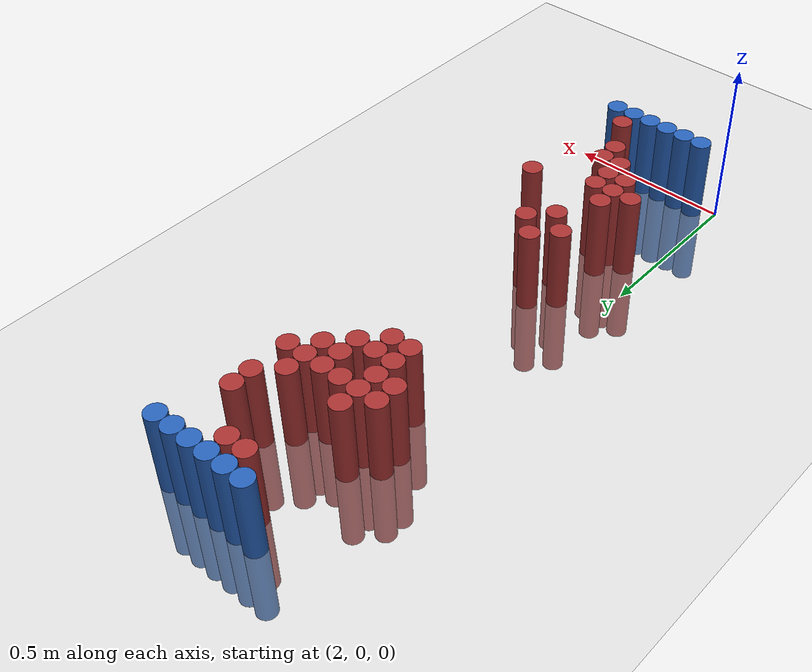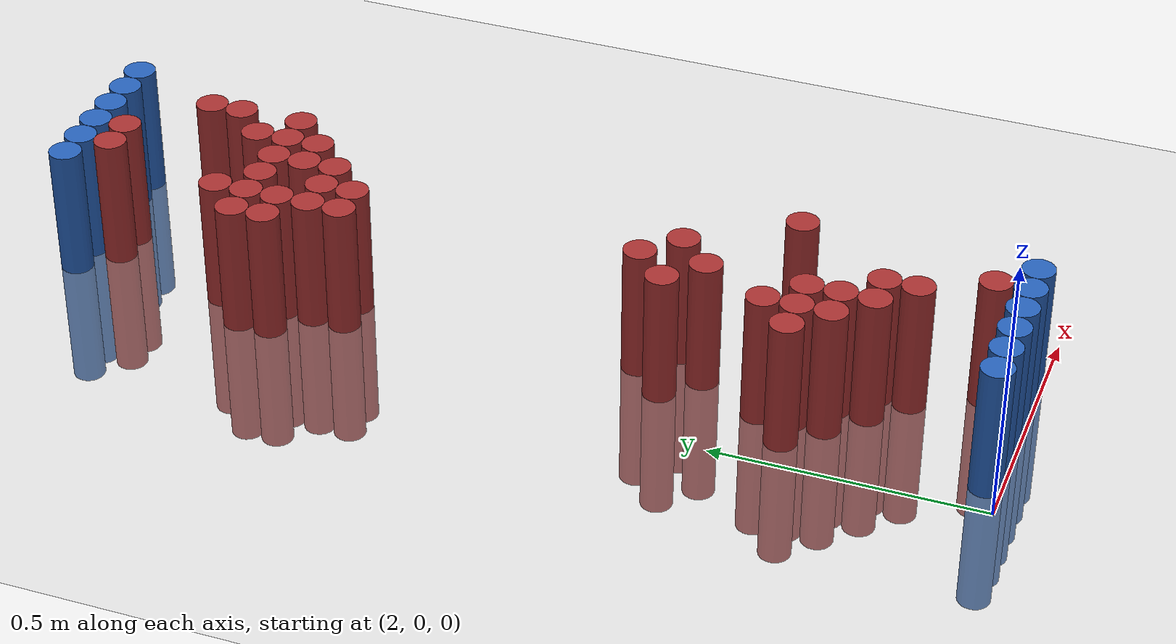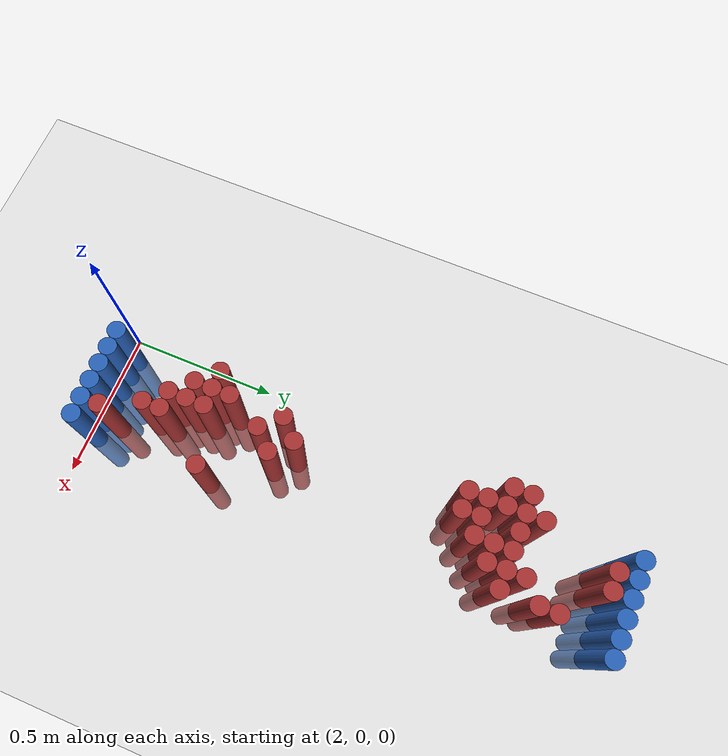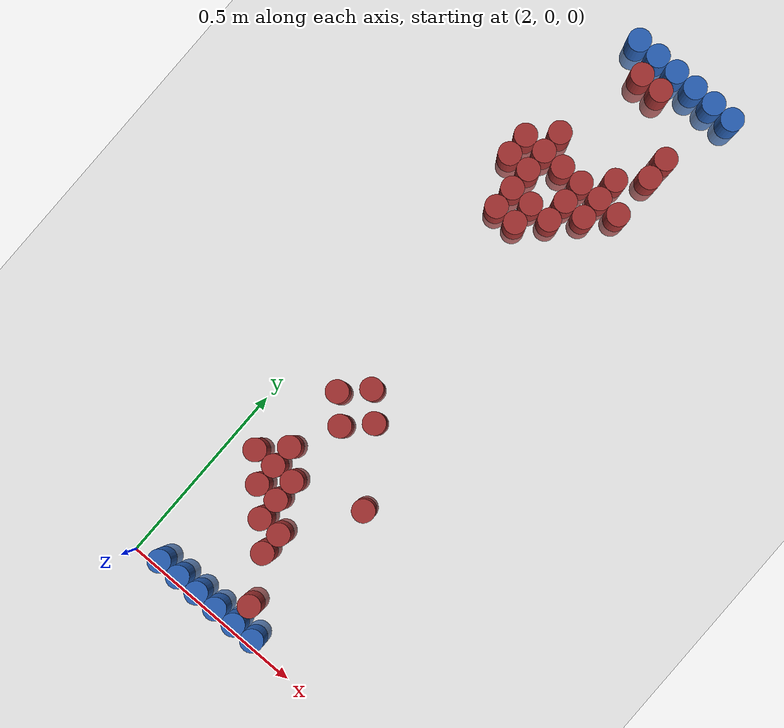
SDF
<sdf version="1.6">
 <world name="default">
  <model name="ground_plane">
   <static>1</static>
   <link name="link">
    <collision name="collision">
     <geometry><plane><normal>0 0 1</normal><size>100 100</size></plane></geometry>
     <surface><friction><ode><mu>100</mu><mu2>50</mu2></ode></friction></surface>
    </collision>
    <visual name="visual">
     <cast_shadows>0</cast_shadows>
     <geometry><plane><normal>0 0 1</normal><size>100 100</size></plane></geometry>
     <material>
      <script><uri>file://media/materials/scripts/gazebo.material</uri><name>Gazebo/Grey</name></script>
     </material>
    </visual>
   </link>
  </model>
  <model name="unit_cylinder_96">
   <static>1</static>
   <pose>2.130000 1.770000 0.000000 0.000000 0.000000 0.000000</pose>
   <link name="link">
    <inertial>
     <mass>1</mass>
     <inertia><ixx>0.145833</ixx><ixy>0</ixy><ixz>0</ixz><iyy>0.145833</iyy><iyz>0</iyz><izz>0.125</izz></inertia>
    </inertial>
    <collision name="collision">
     <geometry><cylinder><radius>0.030000</radius><length>0.5</length></cylinder></geometry>
    </collision>
    <visual name="visual">
     <geometry><cylinder><radius>0.030000</radius><length>0.5</length></cylinder></geometry>
     <material>
      <ambient>0.152000 0.379000 0.720000 1</ambient>
      <diffuse>0.152000 0.379000 0.720000 1</diffuse>
     </material>
     <material>
      <script><name>Gazebo/Grey</name><uri>file://media/materials/scripts/gazebo.material</uri></script>
     </material>
    </visual>
   </link>
  </model>
  <model name="unit_cylinder_97">
   <static>1</static>
   <pose>2.190000 1.770000 0.000000 0.000000 0.000000 0.000000</pose>
   <link name="link">
    <inertial>
     <mass>1</mass>
     <inertia><ixx>0.145833</ixx><ixy>0</ixy><ixz>0</ixz><iyy>0.145833</iyy><iyz>0</iyz><izz>0.125</izz></inertia>
    </inertial>
    <collision name="collision">
     <geometry><cylinder><radius>0.030000</radius><length>0.5</length></cylinder></geometry>
    </collision>
    <visual name="visual">
     <geometry><cylinder><radius>0.030000</radius><length>0.5</length></cylinder></geometry>
     <material>
      <ambient>0.152000 0.379000 0.720000 1</ambient>
      <diffuse>0.152000 0.379000 0.720000 1</diffuse>
     </material>
     <material>
      <script><name>Gazebo/Grey</name><uri>file://media/materials/scripts/gazebo.material</uri></script>
     </material>
    </visual>
   </link>
  </model>
  <model name="unit_cylinder_98">
   <static>1</static>
   <pose>2.250000 1.770000 0.000000 0.000000 0.000000 0.000000</pose>
   <link name="link">
    <inertial>
     <mass>1</mass>
     <inertia><ixx>0.145833</ixx><ixy>0</ixy><ixz>0</ixz><iyy>0.145833</iyy><iyz>0</iyz><izz>0.125</izz></inertia>
    </inertial>
    <collision name="collision">
     <geometry><cylinder><radius>0.030000</radius><length>0.5</length></cylinder></geometry>
    </collision>
    <visual name="visual">
     <geometry><cylinder><radius>0.030000</radius><length>0.5</length></cylinder></geometry>
     <material>
      <ambient>0.152000 0.379000 0.720000 1</ambient>
      <diffuse>0.152000 0.379000 0.720000 1</diffuse>
     </material>
     <material>
      <script><name>Gazebo/Grey</name><uri>file://media/materials/scripts/gazebo.material</uri></script>
     </material>
    </visual>
   </link>
  </model>
  <model name="unit_cylinder_99">
   <static>1</static>
   <pose>2.310000 1.770000 0.000000 0.000000 0.000000 0.000000</pose>
   <link name="link">
    <inertial>
     <mass>1</mass>
     <inertia><ixx>0.145833</ixx><ixy>0</ixy><ixz>0</ixz><iyy>0.145833</iyy><iyz>0</iyz><izz>0.125</izz></inertia>
    </inertial>
    <collision name="collision">
     <geometry><cylinder><radius>0.030000</radius><length>0.5</length></cylinder></geometry>
    </collision>
    <visual name="visual">
     <geometry><cylinder><radius>0.030000</radius><length>0.5</length></cylinder></geometry>
     <material>
      <ambient>0.152000 0.379000 0.720000 1</ambient>
      <diffuse>0.152000 0.379000 0.720000 1</diffuse>
     </material>
     <material>
      <script><name>Gazebo/Grey</name><uri>file://media/materials/scripts/gazebo.material</uri></script>
     </material>
    </visual>
   </link>
  </model>
  <model name="unit_cylinder_100">
   <static>1</static>
   <pose>2.370000 1.770000 0.000000 0.000000 0.000000 0.000000</pose>
   <link name="link">
    <inertial>
     <mass>1</mass>
     <inertia><ixx>0.145833</ixx><ixy>0</ixy><ixz>0</ixz><iyy>0.145833</iyy><iyz>0</iyz><izz>0.125</izz></inertia>
    </inertial>
    <collision name="collision">
     <geometry><cylinder><radius>0.030000</radius><length>0.5</length></cylinder></geometry>
    </collision>
    <visual name="visual">
     <geometry><cylinder><radius>0.030000</radius><length>0.5</length></cylinder></geometry>
     <material>
      <ambient>0.152000 0.379000 0.720000 1</ambient>
      <diffuse>0.152000 0.379000 0.720000 1</diffuse>
     </material>
     <material>
      <script><name>Gazebo/Grey</name><uri>file://media/materials/scripts/gazebo.material</uri></script>
     </material>
    </visual>
   </link>
  </model>
  <model name="unit_cylinder_101">
   <static>1</static>
   <pose>2.430000 1.770000 0.000000 0.000000 0.000000 0.000000</pose>
   <link name="link">
    <inertial>
     <mass>1</mass>
     <inertia><ixx>0.145833</ixx><ixy>0</ixy><ixz>0</ixz><iyy>0.145833</iyy><iyz>0</iyz><izz>0.125</izz></inertia>
    </inertial>
    <collision name="collision">
     <geometry><cylinder><radius>0.030000</radius><length>0.5</length></cylinder></geometry>
    </collision>
    <visual name="visual">
     <geometry><cylinder><radius>0.030000</radius><length>0.5</length></cylinder></geometry>
     <material>
      <ambient>0.152000 0.379000 0.720000 1</ambient>
      <diffuse>0.152000 0.379000 0.720000 1</diffuse>
     </material>
     <material>
      <script><name>Gazebo/Grey</name><uri>file://media/materials/scripts/gazebo.material</uri></script>
     </material>
    </visual>
   </link>
  </model>
  <model name="unit_cylinder_125">
   <static>1</static>
   <pose>2.190000 1.710000 0.000000 0.000000 0.000000 0.000000</pose>
   <link name="link">
    <inertial>
     <mass>1</mass>
     <inertia><ixx>0.145833</ixx><ixy>0</ixy><ixz>0</ixz><iyy>0.145833</iyy><iyz>0</iyz><izz>0.125</izz></inertia>
    </inertial>
    <collision name="collision">
     <geometry><cylinder><radius>0.030000</radius><length>0.5</length></cylinder></geometry>
    </collision>
    <visual name="visual">
     <geometry><cylinder><radius>0.030000</radius><length>0.5</length></cylinder></geometry>
     <material>
      <ambient>0.648000 0.192000 0.192000 1</ambient>
      <diffuse>0.648000 0.192000 0.192000 1</diffuse>
     </material>
     <material>
      <script><name>Gazebo/Grey</name><uri>file://media/materials/scripts/gazebo.material</uri></script>
     </material>
    </visual>
   </link>
  </model>
  <model name="unit_cylinder_126">
   <static>1</static>
   <pose>2.250000 1.710000 0.000000 0.000000 0.000000 0.000000</pose>
   <link name="link">
    <inertial>
     <mass>1</mass>
     <inertia><ixx>0.145833</ixx><ixy>0</ixy><ixz>0</ixz><iyy>0.145833</iyy><iyz>0</iyz><izz>0.125</izz></inertia>
    </inertial>
    <collision name="collision">
     <geometry><cylinder><radius>0.030000</radius><length>0.5</length></cylinder></geometry>
    </collision>
    <visual name="visual">
     <geometry><cylinder><radius>0.030000</radius><length>0.5</length></cylinder></geometry>
     <material>
      <ambient>0.648000 0.192000 0.192000 1</ambient>
      <diffuse>0.648000 0.192000 0.192000 1</diffuse>
     </material>
     <material>
      <script><name>Gazebo/Grey</name><uri>file://media/materials/scripts/gazebo.material</uri></script>
     </material>
    </visual>
   </link>
  </model>
  <model name="unit_cylinder_154">
   <static>1</static>
   <pose>2.370000 1.590000 0.000000 0.000000 0.000000 0.000000</pose>
   <link name="link">
    <inertial>
     <mass>1</mass>
     <inertia><ixx>0.145833</ixx><ixy>0</ixy><ixz>0</ixz><iyy>0.145833</iyy><iyz>0</iyz><izz>0.125</izz></inertia>
    </inertial>
    <collision name="collision">
     <geometry><cylinder><radius>0.030000</radius><length>0.5</length></cylinder></geometry>
    </collision>
    <visual name="visual">
     <geometry><cylinder><radius>0.030000</radius><length>0.5</length></cylinder></geometry>
     <material>
      <ambient>0.648000 0.192000 0.192000 1</ambient>
      <diffuse>0.648000 0.192000 0.192000 1</diffuse>
     </material>
     <material>
      <script><name>Gazebo/Grey</name><uri>file://media/materials/scripts/gazebo.material</uri></script>
     </material>
    </visual>
   </link>
  </model>
  <model name="unit_cylinder_159">
   <static>1</static>
   <pose>2.370000 1.530000 0.000000 0.000000 0.000000 0.000000</pose>
   <link name="link">
    <inertial>
     <mass>1</mass>
     <inertia><ixx>0.145833</ixx><ixy>0</ixy><ixz>0</ixz><iyy>0.145833</iyy><iyz>0</iyz><izz>0.125</izz></inertia>
    </inertial>
    <collision name="collision">
     <geometry><cylinder><radius>0.030000</radius><length>0.5</length></cylinder></geometry>
    </collision>
    <visual name="visual">
     <geometry><cylinder><radius>0.030000</radius><length>0.5</length></cylinder></geometry>
     <material>
      <ambient>0.648000 0.192000 0.192000 1</ambient>
      <diffuse>0.648000 0.192000 0.192000 1</diffuse>
     </material>
     <material>
      <script><name>Gazebo/Grey</name><uri>file://media/materials/scripts/gazebo.material</uri></script>
     </material>
    </visual>
   </link>
  </model>
  <model name="unit_cylinder_167">
   <static>1</static>
   <pose>2.130000 1.470000 0.000000 0.000000 0.000000 0.000000</pose>
   <link name="link">
    <inertial>
     <mass>1</mass>
     <inertia><ixx>0.145833</ixx><ixy>0</ixy><ixz>0</ixz><iyy>0.145833</iyy><iyz>0</iyz><izz>0.125</izz></inertia>
    </inertial>
    <collision name="collision">
     <geometry><cylinder><radius>0.030000</radius><length>0.5</length></cylinder></geometry>
    </collision>
    <visual name="visual">
     <geometry><cylinder><radius>0.030000</radius><length>0.5</length></cylinder></geometry>
     <material>
      <ambient>0.648000 0.192000 0.192000 1</ambient>
      <diffuse>0.648000 0.192000 0.192000 1</diffuse>
     </material>
     <material>
      <script><name>Gazebo/Grey</name><uri>file://media/materials/scripts/gazebo.material</uri></script>
     </material>
    </visual>
   </link>
  </model>
  <model name="unit_cylinder_168">
   <static>1</static>
   <pose>2.310000 1.470000 0.000000 0.000000 0.000000 0.000000</pose>
   <link name="link">
    <inertial>
     <mass>1</mass>
     <inertia><ixx>0.145833</ixx><ixy>0</ixy><ixz>0</ixz><iyy>0.145833</iyy><iyz>0</iyz><izz>0.125</izz></inertia>
    </inertial>
    <collision name="collision">
     <geometry><cylinder><radius>0.030000</radius><length>0.5</length></cylinder></geometry>
    </collision>
    <visual name="visual">
     <geometry><cylinder><radius>0.030000</radius><length>0.5</length></cylinder></geometry>
     <material>
      <ambient>0.648000 0.192000 0.192000 1</ambient>
      <diffuse>0.648000 0.192000 0.192000 1</diffuse>
     </material>
     <material>
      <script><name>Gazebo/Grey</name><uri>file://media/materials/scripts/gazebo.material</uri></script>
     </material>
    </visual>
   </link>
  </model>
  <model name="unit_cylinder_169">
   <static>1</static>
   <pose>2.070000 1.410000 0.000000 0.000000 0.000000 0.000000</pose>
   <link name="link">
    <inertial>
     <mass>1</mass>
     <inertia><ixx>0.145833</ixx><ixy>0</ixy><ixz>0</ixz><iyy>0.145833</iyy><iyz>0</iyz><izz>0.125</izz></inertia>
    </inertial>
    <collision name="collision">
     <geometry><cylinder><radius>0.030000</radius><length>0.5</length></cylinder></geometry>
    </collision>
    <visual name="visual">
     <geometry><cylinder><radius>0.030000</radius><length>0.5</length></cylinder></geometry>
     <material>
      <ambient>0.648000 0.192000 0.192000 1</ambient>
      <diffuse>0.648000 0.192000 0.192000 1</diffuse>
     </material>
     <material>
      <script><name>Gazebo/Grey</name><uri>file://media/materials/scripts/gazebo.material</uri></script>
     </material>
    </visual>
   </link>
  </model>
  <model name="unit_cylinder_170">
   <static>1</static>
   <pose>2.130000 1.410000 0.000000 0.000000 0.000000 0.000000</pose>
   <link name="link">
    <inertial>
     <mass>1</mass>
     <inertia><ixx>0.145833</ixx><ixy>0</ixy><ixz>0</ixz><iyy>0.145833</iyy><iyz>0</iyz><izz>0.125</izz></inertia>
    </inertial>
    <collision name="collision">
     <geometry><cylinder><radius>0.030000</radius><length>0.5</length></cylinder></geometry>
    </collision>
    <visual name="visual">
     <geometry><cylinder><radius>0.030000</radius><length>0.5</length></cylinder></geometry>
     <material>
      <ambient>0.648000 0.192000 0.192000 1</ambient>
      <diffuse>0.648000 0.192000 0.192000 1</diffuse>
     </material>
     <material>
      <script><name>Gazebo/Grey</name><uri>file://media/materials/scripts/gazebo.material</uri></script>
     </material>
    </visual>
   </link>
  </model>
  <model name="unit_cylinder_171">
   <static>1</static>
   <pose>2.190000 1.410000 0.000000 0.000000 0.000000 0.000000</pose>
   <link name="link">
    <inertial>
     <mass>1</mass>
     <inertia><ixx>0.145833</ixx><ixy>0</ixy><ixz>0</ixz><iyy>0.145833</iyy><iyz>0</iyz><izz>0.125</izz></inertia>
    </inertial>
    <collision name="collision">
     <geometry><cylinder><radius>0.030000</radius><length>0.5</length></cylinder></geometry>
    </collision>
    <visual name="visual">
     <geometry><cylinder><radius>0.030000</radius><length>0.5</length></cylinder></geometry>
     <material>
      <ambient>0.648000 0.192000 0.192000 1</ambient>
      <diffuse>0.648000 0.192000 0.192000 1</diffuse>
     </material>
     <material>
      <script><name>Gazebo/Grey</name><uri>file://media/materials/scripts/gazebo.material</uri></script>
     </material>
    </visual>
   </link>
  </model>
  <model name="unit_cylinder_172">
   <static>1</static>
   <pose>2.250000 1.410000 0.000000 0.000000 0.000000 0.000000</pose>
   <link name="link">
    <inertial>
     <mass>1</mass>
     <inertia><ixx>0.145833</ixx><ixy>0</ixy><ixz>0</ixz><iyy>0.145833</iyy><iyz>0</iyz><izz>0.125</izz></inertia>
    </inertial>
    <collision name="collision">
     <geometry><cylinder><radius>0.030000</radius><length>0.5</length></cylinder></geometry>
    </collision>
    <visual name="visual">
     <geometry><cylinder><radius>0.030000</radius><length>0.5</length></cylinder></geometry>
     <material>
      <ambient>0.648000 0.192000 0.192000 1</ambient>
      <diffuse>0.648000 0.192000 0.192000 1</diffuse>
     </material>
     <material>
      <script><name>Gazebo/Grey</name><uri>file://media/materials/scripts/gazebo.material</uri></script>
     </material>
    </visual>
   </link>
  </model>
  <model name="unit_cylinder_173">
   <static>1</static>
   <pose>2.310000 1.410000 0.000000 0.000000 0.000000 0.000000</pose>
   <link name="link">
    <inertial>
     <mass>1</mass>
     <inertia><ixx>0.145833</ixx><ixy>0</ixy><ixz>0</ixz><iyy>0.145833</iyy><iyz>0</iyz><izz>0.125</izz></inertia>
    </inertial>
    <collision name="collision">
     <geometry><cylinder><radius>0.030000</radius><length>0.5</length></cylinder></geometry>
    </collision>
    <visual name="visual">
     <geometry><cylinder><radius>0.030000</radius><length>0.5</length></cylinder></geometry>
     <material>
      <ambient>0.648000 0.192000 0.192000 1</ambient>
      <diffuse>0.648000 0.192000 0.192000 1</diffuse>
     </material>
     <material>
      <script><name>Gazebo/Grey</name><uri>file://media/materials/scripts/gazebo.material</uri></script>
     </material>
    </visual>
   </link>
  </model>
  <model name="unit_cylinder_174">
   <static>1</static>
   <pose>2.370000 1.410000 0.000000 0.000000 0.000000 0.000000</pose>
   <link name="link">
    <inertial>
     <mass>1</mass>
     <inertia><ixx>0.145833</ixx><ixy>0</ixy><ixz>0</ixz><iyy>0.145833</iyy><iyz>0</iyz><izz>0.125</izz></inertia>
    </inertial>
    <collision name="collision">
     <geometry><cylinder><radius>0.030000</radius><length>0.5</length></cylinder></geometry>
    </collision>
    <visual name="visual">
     <geometry><cylinder><radius>0.030000</radius><length>0.5</length></cylinder></geometry>
     <material>
      <ambient>0.648000 0.192000 0.192000 1</ambient>
      <diffuse>0.648000 0.192000 0.192000 1</diffuse>
     </material>
     <material>
      <script><name>Gazebo/Grey</name><uri>file://media/materials/scripts/gazebo.material</uri></script>
     </material>
    </visual>
   </link>
  </model>
  <model name="unit_cylinder_175">
   <static>1</static>
   <pose>2.070000 1.350000 0.000000 0.000000 0.000000 0.000000</pose>
   <link name="link">
    <inertial>
     <mass>1</mass>
     <inertia><ixx>0.145833</ixx><ixy>0</ixy><ixz>0</ixz><iyy>0.145833</iyy><iyz>0</iyz><izz>0.125</izz></inertia>
    </inertial>
    <collision name="collision">
     <geometry><cylinder><radius>0.030000</radius><length>0.5</length></cylinder></geometry>
    </collision>
    <visual name="visual">
     <geometry><cylinder><radius>0.030000</radius><length>0.5</length></cylinder></geometry>
     <material>
      <ambient>0.648000 0.192000 0.192000 1</ambient>
      <diffuse>0.648000 0.192000 0.192000 1</diffuse>
     </material>
     <material>
      <script><name>Gazebo/Grey</name><uri>file://media/materials/scripts/gazebo.material</uri></script>
     </material>
    </visual>
   </link>
  </model>
  <model name="unit_cylinder_176">
   <static>1</static>
   <pose>2.130000 1.350000 0.000000 0.000000 0.000000 0.000000</pose>
   <link name="link">
    <inertial>
     <mass>1</mass>
     <inertia><ixx>0.145833</ixx><ixy>0</ixy><ixz>0</ixz><iyy>0.145833</iyy><iyz>0</iyz><izz>0.125</izz></inertia>
    </inertial>
    <collision name="collision">
     <geometry><cylinder><radius>0.030000</radius><length>0.5</length></cylinder></geometry>
    </collision>
    <visual name="visual">
     <geometry><cylinder><radius>0.030000</radius><length>0.5</length></cylinder></geometry>
     <material>
      <ambient>0.648000 0.192000 0.192000 1</ambient>
      <diffuse>0.648000 0.192000 0.192000 1</diffuse>
     </material>
     <material>
      <script><name>Gazebo/Grey</name><uri>file://media/materials/scripts/gazebo.material</uri></script>
     </material>
    </visual>
   </link>
  </model>
  <model name="unit_cylinder_177">
   <static>1</static>
   <pose>2.250000 1.350000 0.000000 0.000000 0.000000 0.000000</pose>
   <link name="link">
    <inertial>
     <mass>1</mass>
     <inertia><ixx>0.145833</ixx><ixy>0</ixy><ixz>0</ixz><iyy>0.145833</iyy><iyz>0</iyz><izz>0.125</izz></inertia>
    </inertial>
    <collision name="collision">
     <geometry><cylinder><radius>0.030000</radius><length>0.5</length></cylinder></geometry>
    </collision>
    <visual name="visual">
     <geometry><cylinder><radius>0.030000</radius><length>0.5</length></cylinder></geometry>
     <material>
      <ambient>0.648000 0.192000 0.192000 1</ambient>
      <diffuse>0.648000 0.192000 0.192000 1</diffuse>
     </material>
     <material>
      <script><name>Gazebo/Grey</name><uri>file://media/materials/scripts/gazebo.material</uri></script>
     </material>
    </visual>
   </link>
  </model>
  <model name="unit_cylinder_178">
   <static>1</static>
   <pose>2.310000 1.350000 0.000000 0.000000 0.000000 0.000000</pose>
   <link name="link">
    <inertial>
     <mass>1</mass>
     <inertia><ixx>0.145833</ixx><ixy>0</ixy><ixz>0</ixz><iyy>0.145833</iyy><iyz>0</iyz><izz>0.125</izz></inertia>
    </inertial>
    <collision name="collision">
     <geometry><cylinder><radius>0.030000</radius><length>0.5</length></cylinder></geometry>
    </collision>
    <visual name="visual">
     <geometry><cylinder><radius>0.030000</radius><length>0.5</length></cylinder></geometry>
     <material>
      <ambient>0.648000 0.192000 0.192000 1</ambient>
      <diffuse>0.648000 0.192000 0.192000 1</diffuse>
     </material>
     <material>
      <script><name>Gazebo/Grey</name><uri>file://media/materials/scripts/gazebo.material</uri></script>
     </material>
    </visual>
   </link>
  </model>
  <model name="unit_cylinder_179">
   <static>1</static>
   <pose>2.130000 1.290000 0.000000 0.000000 0.000000 0.000000</pose>
   <link name="link">
    <inertial>
     <mass>1</mass>
     <inertia><ixx>0.145833</ixx><ixy>0</ixy><ixz>0</ixz><iyy>0.145833</iyy><iyz>0</iyz><izz>0.125</izz></inertia>
    </inertial>
    <collision name="collision">
     <geometry><cylinder><radius>0.030000</radius><length>0.5</length></cylinder></geometry>
    </collision>
    <visual name="visual">
     <geometry><cylinder><radius>0.030000</radius><length>0.5</length></cylinder></geometry>
     <material>
      <ambient>0.648000 0.192000 0.192000 1</ambient>
      <diffuse>0.648000 0.192000 0.192000 1</diffuse>
     </material>
     <material>
      <script><name>Gazebo/Grey</name><uri>file://media/materials/scripts/gazebo.material</uri></script>
     </material>
    </visual>
   </link>
  </model>
  <model name="unit_cylinder_180">
   <static>1</static>
   <pose>2.190000 1.290000 0.000000 0.000000 0.000000 0.000000</pose>
   <link name="link">
    <inertial>
     <mass>1</mass>
     <inertia><ixx>0.145833</ixx><ixy>0</ixy><ixz>0</ixz><iyy>0.145833</iyy><iyz>0</iyz><izz>0.125</izz></inertia>
    </inertial>
    <collision name="collision">
     <geometry><cylinder><radius>0.030000</radius><length>0.5</length></cylinder></geometry>
    </collision>
    <visual name="visual">
     <geometry><cylinder><radius>0.030000</radius><length>0.5</length></cylinder></geometry>
     <material>
      <ambient>0.648000 0.192000 0.192000 1</ambient>
      <diffuse>0.648000 0.192000 0.192000 1</diffuse>
     </material>
     <material>
      <script><name>Gazebo/Grey</name><uri>file://media/materials/scripts/gazebo.material</uri></script>
     </material>
    </visual>
   </link>
  </model>
  <model name="unit_cylinder_181">
   <static>1</static>
   <pose>2.250000 1.290000 0.000000 0.000000 0.000000 0.000000</pose>
   <link name="link">
    <inertial>
     <mass>1</mass>
     <inertia><ixx>0.145833</ixx><ixy>0</ixy><ixz>0</ixz><iyy>0.145833</iyy><iyz>0</iyz><izz>0.125</izz></inertia>
    </inertial>
    <collision name="collision">
     <geometry><cylinder><radius>0.030000</radius><length>0.5</length></cylinder></geometry>
    </collision>
    <visual name="visual">
     <geometry><cylinder><radius>0.030000</radius><length>0.5</length></cylinder></geometry>
     <material>
      <ambient>0.648000 0.192000 0.192000 1</ambient>
      <diffuse>0.648000 0.192000 0.192000 1</diffuse>
     </material>
     <material>
      <script><name>Gazebo/Grey</name><uri>file://media/materials/scripts/gazebo.material</uri></script>
     </material>
    </visual>
   </link>
  </model>
  <model name="unit_cylinder_182">
   <static>1</static>
   <pose>2.130000 1.230000 0.000000 0.000000 0.000000 0.000000</pose>
   <link name="link">
    <inertial>
     <mass>1</mass>
     <inertia><ixx>0.145833</ixx><ixy>0</ixy><ixz>0</ixz><iyy>0.145833</iyy><iyz>0</iyz><izz>0.125</izz></inertia>
    </inertial>
    <collision name="collision">
     <geometry><cylinder><radius>0.030000</radius><length>0.5</length></cylinder></geometry>
    </collision>
    <visual name="visual">
     <geometry><cylinder><radius>0.030000</radius><length>0.5</length></cylinder></geometry>
     <material>
      <ambient>0.648000 0.192000 0.192000 1</ambient>
      <diffuse>0.648000 0.192000 0.192000 1</diffuse>
     </material>
     <material>
      <script><name>Gazebo/Grey</name><uri>file://media/materials/scripts/gazebo.material</uri></script>
     </material>
    </visual>
   </link>
  </model>
  <model name="unit_cylinder_183">
   <static>1</static>
   <pose>2.190000 1.230000 0.000000 0.000000 0.000000 0.000000</pose>
   <link name="link">
    <inertial>
     <mass>1</mass>
     <inertia><ixx>0.145833</ixx><ixy>0</ixy><ixz>0</ixz><iyy>0.145833</iyy><iyz>0</iyz><izz>0.125</izz></inertia>
    </inertial>
    <collision name="collision">
     <geometry><cylinder><radius>0.030000</radius><length>0.5</length></cylinder></geometry>
    </collision>
    <visual name="visual">
     <geometry><cylinder><radius>0.030000</radius><length>0.5</length></cylinder></geometry>
     <material>
      <ambient>0.648000 0.192000 0.192000 1</ambient>
      <diffuse>0.648000 0.192000 0.192000 1</diffuse>
     </material>
     <material>
      <script><name>Gazebo/Grey</name><uri>file://media/materials/scripts/gazebo.material</uri></script>
     </material>
    </visual>
   </link>
  </model>
  <model name="unit_cylinder_221">
   <static>1</static>
   <pose>2.190000 0.690000 0.000000 0.000000 0.000000 0.000000</pose>
   <link name="link">
    <inertial>
     <mass>1</mass>
     <inertia><ixx>0.145833</ixx><ixy>0</ixy><ixz>0</ixz><iyy>0.145833</iyy><iyz>0</iyz><izz>0.125</izz></inertia>
    </inertial>
    <collision name="collision">
     <geometry><cylinder><radius>0.030000</radius><length>0.5</length></cylinder></geometry>
    </collision>
    <visual name="visual">
     <geometry><cylinder><radius>0.030000</radius><length>0.5</length></cylinder></geometry>
     <material>
      <ambient>0.648000 0.192000 0.192000 1</ambient>
      <diffuse>0.648000 0.192000 0.192000 1</diffuse>
     </material>
     <material>
      <script><name>Gazebo/Grey</name><uri>file://media/materials/scripts/gazebo.material</uri></script>
     </material>
    </visual>
   </link>
  </model>
  <model name="unit_cylinder_230">
   <static>1</static>
   <pose>2.130000 0.630000 0.000000 0.000000 0.000000 0.000000</pose>
   <link name="link">
    <inertial>
     <mass>1</mass>
     <inertia><ixx>0.145833</ixx><ixy>0</ixy><ixz>0</ixz><iyy>0.145833</iyy><iyz>0</iyz><izz>0.125</izz></inertia>
    </inertial>
    <collision name="collision">
     <geometry><cylinder><radius>0.030000</radius><length>0.5</length></cylinder></geometry>
    </collision>
    <visual name="visual">
     <geometry><cylinder><radius>0.030000</radius><length>0.5</length></cylinder></geometry>
     <material>
      <ambient>0.648000 0.192000 0.192000 1</ambient>
      <diffuse>0.648000 0.192000 0.192000 1</diffuse>
     </material>
     <material>
      <script><name>Gazebo/Grey</name><uri>file://media/materials/scripts/gazebo.material</uri></script>
     </material>
    </visual>
   </link>
  </model>
  <model name="unit_cylinder_231">
   <static>1</static>
   <pose>2.250000 0.630000 0.000000 0.000000 0.000000 0.000000</pose>
   <link name="link">
    <inertial>
     <mass>1</mass>
     <inertia><ixx>0.145833</ixx><ixy>0</ixy><ixz>0</ixz><iyy>0.145833</iyy><iyz>0</iyz><izz>0.125</izz></inertia>
    </inertial>
    <collision name="collision">
     <geometry><cylinder><radius>0.030000</radius><length>0.5</length></cylinder></geometry>
    </collision>
    <visual name="visual">
     <geometry><cylinder><radius>0.030000</radius><length>0.5</length></cylinder></geometry>
     <material>
      <ambient>0.648000 0.192000 0.192000 1</ambient>
      <diffuse>0.648000 0.192000 0.192000 1</diffuse>
     </material>
     <material>
      <script><name>Gazebo/Grey</name><uri>file://media/materials/scripts/gazebo.material</uri></script>
     </material>
    </visual>
   </link>
  </model>
  <model name="unit_cylinder_235">
   <static>1</static>
   <pose>2.190000 0.570000 0.000000 0.000000 0.000000 0.000000</pose>
   <link name="link">
    <inertial>
     <mass>1</mass>
     <inertia><ixx>0.145833</ixx><ixy>0</ixy><ixz>0</ixz><iyy>0.145833</iyy><iyz>0</iyz><izz>0.125</izz></inertia>
    </inertial>
    <collision name="collision">
     <geometry><cylinder><radius>0.030000</radius><length>0.5</length></cylinder></geometry>
    </collision>
    <visual name="visual">
     <geometry><cylinder><radius>0.030000</radius><length>0.5</length></cylinder></geometry>
     <material>
      <ambient>0.648000 0.192000 0.192000 1</ambient>
      <diffuse>0.648000 0.192000 0.192000 1</diffuse>
     </material>
     <material>
      <script><name>Gazebo/Grey</name><uri>file://media/materials/scripts/gazebo.material</uri></script>
     </material>
    </visual>
   </link>
  </model>
  <model name="unit_cylinder_246">
   <static>1</static>
   <pose>2.130000 0.450000 0.000000 0.000000 0.000000 0.000000</pose>
   <link name="link">
    <inertial>
     <mass>1</mass>
     <inertia><ixx>0.145833</ixx><ixy>0</ixy><ixz>0</ixz><iyy>0.145833</iyy><iyz>0</iyz><izz>0.125</izz></inertia>
    </inertial>
    <collision name="collision">
     <geometry><cylinder><radius>0.030000</radius><length>0.5</length></cylinder></geometry>
    </collision>
    <visual name="visual">
     <geometry><cylinder><radius>0.030000</radius><length>0.5</length></cylinder></geometry>
     <material>
      <ambient>0.648000 0.192000 0.192000 1</ambient>
      <diffuse>0.648000 0.192000 0.192000 1</diffuse>
     </material>
     <material>
      <script><name>Gazebo/Grey</name><uri>file://media/materials/scripts/gazebo.material</uri></script>
     </material>
    </visual>
   </link>
  </model>
  <model name="unit_cylinder_247">
   <static>1</static>
   <pose>2.370000 0.450000 0.000000 0.000000 0.000000 0.000000</pose>
   <link name="link">
    <inertial>
     <mass>1</mass>
     <inertia><ixx>0.145833</ixx><ixy>0</ixy><ixz>0</ixz><iyy>0.145833</iyy><iyz>0</iyz><izz>0.125</izz></inertia>
    </inertial>
    <collision name="collision">
     <geometry><cylinder><radius>0.030000</radius><length>0.5</length></cylinder></geometry>
    </collision>
    <visual name="visual">
     <geometry><cylinder><radius>0.030000</radius><length>0.5</length></cylinder></geometry>
     <material>
      <ambient>0.648000 0.192000 0.192000 1</ambient>
      <diffuse>0.648000 0.192000 0.192000 1</diffuse>
     </material>
     <material>
      <script><name>Gazebo/Grey</name><uri>file://media/materials/scripts/gazebo.material</uri></script>
     </material>
    </visual>
   </link>
  </model>
  <model name="unit_cylinder_257">
   <static>1</static>
   <pose>2.070000 0.390000 0.000000 0.000000 0.000000 0.000000</pose>
   <link name="link">
    <inertial>
     <mass>1</mass>
     <inertia><ixx>0.145833</ixx><ixy>0</ixy><ixz>0</ixz><iyy>0.145833</iyy><iyz>0</iyz><izz>0.125</izz></inertia>
    </inertial>
    <collision name="collision">
     <geometry><cylinder><radius>0.030000</radius><length>0.5</length></cylinder></geometry>
    </collision>
    <visual name="visual">
     <geometry><cylinder><radius>0.030000</radius><length>0.5</length></cylinder></geometry>
     <material>
      <ambient>0.648000 0.192000 0.192000 1</ambient>
      <diffuse>0.648000 0.192000 0.192000 1</diffuse>
     </material>
     <material>
      <script><name>Gazebo/Grey</name><uri>file://media/materials/scripts/gazebo.material</uri></script>
     </material>
    </visual>
   </link>
  </model>
  <model name="unit_cylinder_258">
   <static>1</static>
   <pose>2.130000 0.390000 0.000000 0.000000 0.000000 0.000000</pose>
   <link name="link">
    <inertial>
     <mass>1</mass>
     <inertia><ixx>0.145833</ixx><ixy>0</ixy><ixz>0</ixz><iyy>0.145833</iyy><iyz>0</iyz><izz>0.125</izz></inertia>
    </inertial>
    <collision name="collision">
     <geometry><cylinder><radius>0.030000</radius><length>0.5</length></cylinder></geometry>
    </collision>
    <visual name="visual">
     <geometry><cylinder><radius>0.030000</radius><length>0.5</length></cylinder></geometry>
     <material>
      <ambient>0.648000 0.192000 0.192000 1</ambient>
      <diffuse>0.648000 0.192000 0.192000 1</diffuse>
     </material>
     <material>
      <script><name>Gazebo/Grey</name><uri>file://media/materials/scripts/gazebo.material</uri></script>
     </material>
    </visual>
   </link>
  </model>
  <model name="unit_cylinder_259">
   <static>1</static>
   <pose>2.190000 0.390000 0.000000 0.000000 0.000000 0.000000</pose>
   <link name="link">
    <inertial>
     <mass>1</mass>
     <inertia><ixx>0.145833</ixx><ixy>0</ixy><ixz>0</ixz><iyy>0.145833</iyy><iyz>0</iyz><izz>0.125</izz></inertia>
    </inertial>
    <collision name="collision">
     <geometry><cylinder><radius>0.030000</radius><length>0.5</length></cylinder></geometry>
    </collision>
    <visual name="visual">
     <geometry><cylinder><radius>0.030000</radius><length>0.5</length></cylinder></geometry>
     <material>
      <ambient>0.648000 0.192000 0.192000 1</ambient>
      <diffuse>0.648000 0.192000 0.192000 1</diffuse>
     </material>
     <material>
      <script><name>Gazebo/Grey</name><uri>file://media/materials/scripts/gazebo.material</uri></script>
     </material>
    </visual>
   </link>
  </model>
  <model name="unit_cylinder_269">
   <static>1</static>
   <pose>2.130000 0.330000 0.000000 0.000000 0.000000 0.000000</pose>
   <link name="link">
    <inertial>
     <mass>1</mass>
     <inertia><ixx>0.145833</ixx><ixy>0</ixy><ixz>0</ixz><iyy>0.145833</iyy><iyz>0</iyz><izz>0.125</izz></inertia>
    </inertial>
    <collision name="collision">
     <geometry><cylinder><radius>0.030000</radius><length>0.5</length></cylinder></geometry>
    </collision>
    <visual name="visual">
     <geometry><cylinder><radius>0.030000</radius><length>0.5</length></cylinder></geometry>
     <material>
      <ambient>0.648000 0.192000 0.192000 1</ambient>
      <diffuse>0.648000 0.192000 0.192000 1</diffuse>
     </material>
     <material>
      <script><name>Gazebo/Grey</name><uri>file://media/materials/scripts/gazebo.material</uri></script>
     </material>
    </visual>
   </link>
  </model>
  <model name="unit_cylinder_270">
   <static>1</static>
   <pose>2.190000 0.330000 0.000000 0.000000 0.000000 0.000000</pose>
   <link name="link">
    <inertial>
     <mass>1</mass>
     <inertia><ixx>0.145833</ixx><ixy>0</ixy><ixz>0</ixz><iyy>0.145833</iyy><iyz>0</iyz><izz>0.125</izz></inertia>
    </inertial>
    <collision name="collision">
     <geometry><cylinder><radius>0.030000</radius><length>0.5</length></cylinder></geometry>
    </collision>
    <visual name="visual">
     <geometry><cylinder><radius>0.030000</radius><length>0.5</length></cylinder></geometry>
     <material>
      <ambient>0.648000 0.192000 0.192000 1</ambient>
      <diffuse>0.648000 0.192000 0.192000 1</diffuse>
     </material>
     <material>
      <script><name>Gazebo/Grey</name><uri>file://media/materials/scripts/gazebo.material</uri></script>
     </material>
    </visual>
   </link>
  </model>
  <model name="unit_cylinder_279">
   <static>1</static>
   <pose>2.190000 0.270000 0.000000 0.000000 0.000000 0.000000</pose>
   <link name="link">
    <inertial>
     <mass>1</mass>
     <inertia><ixx>0.145833</ixx><ixy>0</ixy><ixz>0</ixz><iyy>0.145833</iyy><iyz>0</iyz><izz>0.125</izz></inertia>
    </inertial>
    <collision name="collision">
     <geometry><cylinder><radius>0.030000</radius><length>0.5</length></cylinder></geometry>
    </collision>
    <visual name="visual">
     <geometry><cylinder><radius>0.030000</radius><length>0.5</length></cylinder></geometry>
     <material>
      <ambient>0.648000 0.192000 0.192000 1</ambient>
      <diffuse>0.648000 0.192000 0.192000 1</diffuse>
     </material>
     <material>
      <script><name>Gazebo/Grey</name><uri>file://media/materials/scripts/gazebo.material</uri></script>
     </material>
    </visual>
   </link>
  </model>
  <model name="unit_cylinder_280">
   <static>1</static>
   <pose>2.250000 0.270000 0.000000 0.000000 0.000000 0.000000</pose>
   <link name="link">
    <inertial>
     <mass>1</mass>
     <inertia><ixx>0.145833</ixx><ixy>0</ixy><ixz>0</ixz><iyy>0.145833</iyy><iyz>0</iyz><izz>0.125</izz></inertia>
    </inertial>
    <collision name="collision">
     <geometry><cylinder><radius>0.030000</radius><length>0.5</length></cylinder></geometry>
    </collision>
    <visual name="visual">
     <geometry><cylinder><radius>0.030000</radius><length>0.5</length></cylinder></geometry>
     <material>
      <ambient>0.648000 0.192000 0.192000 1</ambient>
      <diffuse>0.648000 0.192000 0.192000 1</diffuse>
     </material>
     <material>
      <script><name>Gazebo/Grey</name><uri>file://media/materials/scripts/gazebo.material</uri></script>
     </material>
    </visual>
   </link>
  </model>
  <model name="unit_cylinder_287">
   <static>1</static>
   <pose>2.250000 0.210000 0.000000 0.000000 0.000000 0.000000</pose>
   <link name="link">
    <inertial>
     <mass>1</mass>
     <inertia><ixx>0.145833</ixx><ixy>0</ixy><ixz>0</ixz><iyy>0.145833</iyy><iyz>0</iyz><izz>0.125</izz></inertia>
    </inertial>
    <collision name="collision">
     <geometry><cylinder><radius>0.030000</radius><length>0.5</length></cylinder></geometry>
    </collision>
    <visual name="visual">
     <geometry><cylinder><radius>0.030000</radius><length>0.5</length></cylinder></geometry>
     <material>
      <ambient>0.648000 0.192000 0.192000 1</ambient>
      <diffuse>0.648000 0.192000 0.192000 1</diffuse>
     </material>
     <material>
      <script><name>Gazebo/Grey</name><uri>file://media/materials/scripts/gazebo.material</uri></script>
     </material>
    </visual>
   </link>
  </model>
  <model name="unit_cylinder_297">
   <static>1</static>
   <pose>2.310000 0.090000 0.000000 0.000000 0.000000 0.000000</pose>
   <link name="link">
    <inertial>
     <mass>1</mass>
     <inertia><ixx>0.145833</ixx><ixy>0</ixy><ixz>0</ixz><iyy>0.145833</iyy><iyz>0</iyz><izz>0.125</izz></inertia>
    </inertial>
    <collision name="collision">
     <geometry><cylinder><radius>0.030000</radius><length>0.5</length></cylinder></geometry>
    </collision>
    <visual name="visual">
     <geometry><cylinder><radius>0.030000</radius><length>0.5</length></cylinder></geometry>
     <material>
      <ambient>0.648000 0.192000 0.192000 1</ambient>
      <diffuse>0.648000 0.192000 0.192000 1</diffuse>
     </material>
     <material>
      <script><name>Gazebo/Grey</name><uri>file://media/materials/scripts/gazebo.material</uri></script>
     </material>
    </visual>
   </link>
  </model>
  <model name="unit_cylinder_307">
   <static>1</static>
   <pose>2.070000 0.030000 0.000000 0.000000 0.000000 0.000000</pose>
   <link name="link">
    <inertial>
     <mass>1</mass>
     <inertia><ixx>0.145833</ixx><ixy>0</ixy><ixz>0</ixz><iyy>0.145833</iyy><iyz>0</iyz><izz>0.125</izz></inertia>
    </inertial>
    <collision name="collision">
     <geometry><cylinder><radius>0.030000</radius><length>0.5</length></cylinder></geometry>
    </collision>
    <visual name="visual">
     <geometry><cylinder><radius>0.030000</radius><length>0.5</length></cylinder></geometry>
     <material>
      <ambient>0.152000 0.379000 0.720000 1</ambient>
      <diffuse>0.152000 0.379000 0.720000 1</diffuse>
     </material>
     <material>
      <script><name>Gazebo/Grey</name><uri>file://media/materials/scripts/gazebo.material</uri></script>
     </material>
    </visual>
   </link>
  </model>
  <model name="unit_cylinder_308">
   <static>1</static>
   <pose>2.130000 0.030000 0.000000 0.000000 0.000000 0.000000</pose>
   <link name="link">
    <inertial>
     <mass>1</mass>
     <inertia><ixx>0.145833</ixx><ixy>0</ixy><ixz>0</ixz><iyy>0.145833</iyy><iyz>0</iyz><izz>0.125</izz></inertia>
    </inertial>
    <collision name="collision">
     <geometry><cylinder><radius>0.030000</radius><length>0.5</length></cylinder></geometry>
    </collision>
    <visual name="visual">
     <geometry><cylinder><radius>0.030000</radius><length>0.5</length></cylinder></geometry>
     <material>
      <ambient>0.152000 0.379000 0.720000 1</ambient>
      <diffuse>0.152000 0.379000 0.720000 1</diffuse>
     </material>
     <material>
      <script><name>Gazebo/Grey</name><uri>file://media/materials/scripts/gazebo.material</uri></script>
     </material>
    </visual>
   </link>
  </model>
  <model name="unit_cylinder_309">
   <static>1</static>
   <pose>2.190000 0.030000 0.000000 0.000000 0.000000 0.000000</pose>
   <link name="link">
    <inertial>
     <mass>1</mass>
     <inertia><ixx>0.145833</ixx><ixy>0</ixy><ixz>0</ixz><iyy>0.145833</iyy><iyz>0</iyz><izz>0.125</izz></inertia>
    </inertial>
    <collision name="collision">
     <geometry><cylinder><radius>0.030000</radius><length>0.5</length></cylinder></geometry>
    </collision>
    <visual name="visual">
     <geometry><cylinder><radius>0.030000</radius><length>0.5</length></cylinder></geometry>
     <material>
      <ambient>0.152000 0.379000 0.720000 1</ambient>
      <diffuse>0.152000 0.379000 0.720000 1</diffuse>
     </material>
     <material>
      <script><name>Gazebo/Grey</name><uri>file://media/materials/scripts/gazebo.material</uri></script>
     </material>
    </visual>
   </link>
  </model>
  <model name="unit_cylinder_310">
   <static>1</static>
   <pose>2.250000 0.030000 0.000000 0.000000 0.000000 0.000000</pose>
   <link name="link">
    <inertial>
     <mass>1</mass>
     <inertia><ixx>0.145833</ixx><ixy>0</ixy><ixz>0</ixz><iyy>0.145833</iyy><iyz>0</iyz><izz>0.125</izz></inertia>
    </inertial>
    <collision name="collision">
     <geometry><cylinder><radius>0.030000</radius><length>0.5</length></cylinder></geometry>
    </collision>
    <visual name="visual">
     <geometry><cylinder><radius>0.030000</radius><length>0.5</length></cylinder></geometry>
     <material>
      <ambient>0.152000 0.379000 0.720000 1</ambient>
      <diffuse>0.152000 0.379000 0.720000 1</diffuse>
     </material>
     <material>
      <script><name>Gazebo/Grey</name><uri>file://media/materials/scripts/gazebo.material</uri></script>
     </material>
    </visual>
   </link>
  </model>
  <model name="unit_cylinder_311">
   <static>1</static>
   <pose>2.310000 0.030000 0.000000 0.000000 0.000000 0.000000</pose>
   <link name="link">
    <inertial>
     <mass>1</mass>
     <inertia><ixx>0.145833</ixx><ixy>0</ixy><ixz>0</ixz><iyy>0.145833</iyy><iyz>0</iyz><izz>0.125</izz></inertia>
    </inertial>
    <collision name="collision">
     <geometry><cylinder><radius>0.030000</radius><length>0.5</length></cylinder></geometry>
    </collision>
    <visual name="visual">
     <geometry><cylinder><radius>0.030000</radius><length>0.5</length></cylinder></geometry>
     <material>
      <ambient>0.152000 0.379000 0.720000 1</ambient>
      <diffuse>0.152000 0.379000 0.720000 1</diffuse>
     </material>
     <material>
      <script><name>Gazebo/Grey</name><uri>file://media/materials/scripts/gazebo.material</uri></script>
     </material>
    </visual>
   </link>
  </model>
  <model name="unit_cylinder_312">
   <static>1</static>
   <pose>2.370000 0.030000 0.000000 0.000000 0.000000 0.000000</pose>
   <link name="link">
    <inertial>
     <mass>1</mass>
     <inertia><ixx>0.145833</ixx><ixy>0</ixy><ixz>0</ixz><iyy>0.145833</iyy><iyz>0</iyz><izz>0.125</izz></inertia>
    </inertial>
    <collision name="collision">
     <geometry><cylinder><radius>0.030000</radius><length>0.5</length></cylinder></geometry>
    </collision>
    <visual name="visual">
     <geometry><cylinder><radius>0.030000</radius><length>0.5</length></cylinder></geometry>
     <material>
      <ambient>0.152000 0.379000 0.720000 1</ambient>
      <diffuse>0.152000 0.379000 0.720000 1</diffuse>
     </material>
     <material>
      <script><name>Gazebo/Grey</name><uri>file://media/materials/scripts/gazebo.material</uri></script>
     </material>
    </visual>
   </link>
  </model>
 </world>
</sdf>
